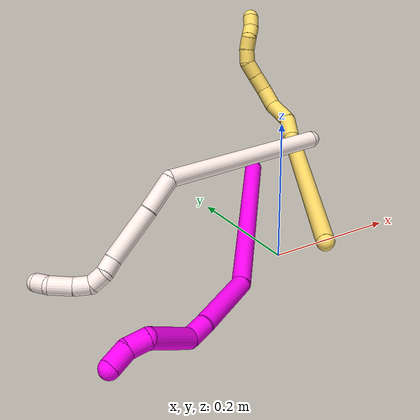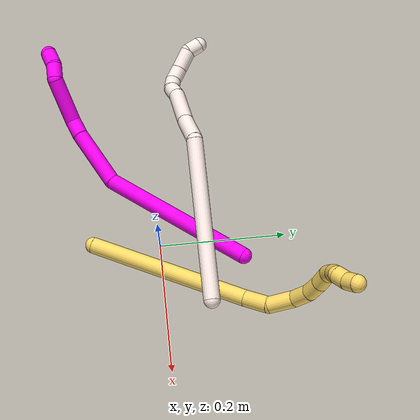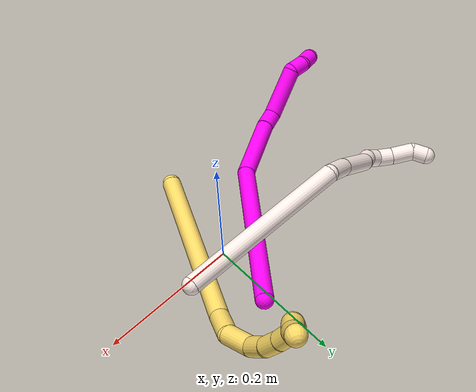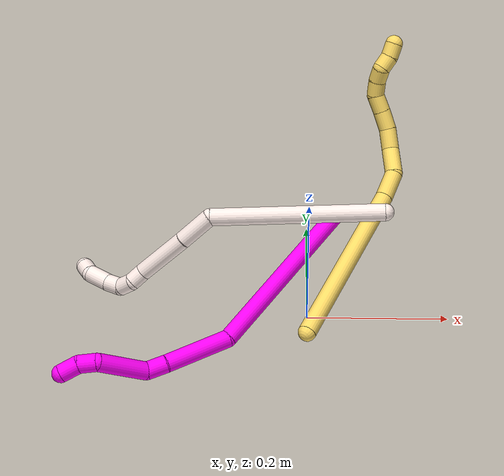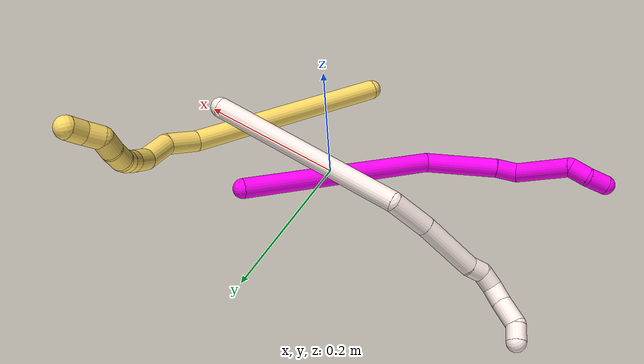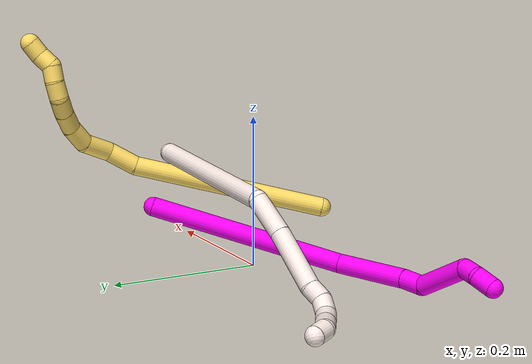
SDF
<sdf version="1.7">
 <world name="default">
  <model name="photoneo_s_sensor">
   <static>1</static>
   <pose>0 0 2 1.57079 1.57079 3.14159</pose>
   <link name="link">
    <inertial><mass>0.1</mass></inertial>
    <sensor name="sensor" type="depth">
     <update_rate>30</update_rate>
     <camera>
      <horizontal_fov>1.22</horizontal_fov>
      <image><width>1920</width><height>1200</height><format>B8G8R8</format></image>
      <clip><near>0.1</near><far>4</far></clip>
      <depth_camera><output>points</output></depth_camera>
     </camera>
     <plugin name="camera_plugin" filename="libgazebo_ros_depth_camera.so">
      <baseline>0.2</baseline>
      <alwaysOn>1</alwaysOn>
      <updateRate>0.0</updateRate>
      <cameraName>camera_ir</cameraName>
      <imageTopicName>/camera/color/image_raw</imageTopicName>
      <cameraInfoTopicName>/camera/color/camera_info</cameraInfoTopicName>
      <depthImageTopicName>/camera/depth/image_raw</depthImageTopicName>
      <depthImageCameraInfoTopicName>/camera/depth/camera_info</depthImageCameraInfoTopicName>
      <pointCloudTopicName>/camera/depth/points</pointCloudTopicName>
      <frameName>fr_optical</frameName>
      <pointCloudCutoff>0.1</pointCloudCutoff>
      <pointCloudCutoffMax>2.0</pointCloudCutoffMax>
      <distortionK1>0</distortionK1>
      <distortionK2>0</distortionK2>
      <distortionK3>0</distortionK3>
      <distortionT1>0</distortionT1>
      <distortionT2>0</distortionT2>
      <CxPrime>0</CxPrime>
      <Cx>0</Cx>
      <Cy>0</Cy>
      <focalLength>0</focalLength>
      <hackBaseline>0</hackBaseline>
     </plugin>
    </sensor>
   </link>
  </model>
  <model name="bin">
   <static>1</static>
   <link name="bottom">
    <collision name="collision-bottom">
     <pose>0 0 -0.01 0 -0 0</pose>
     <geometry><box><size>0.8 0.6 0.02</size></box></geometry>
     <surface>
      <friction><ode><mu>100</mu><mu2>100</mu2></ode></friction>
      <contact><collide_bitmask>65535</collide_bitmask></contact>
     </surface>
    </collision>
   </link>
   <link name="west_wall">
    <collision name="collision-west_wall">
     <pose>-0.41 0 0.1 0 -0 0</pose>
     <geometry><box><size>0.02 0.6 0.2</size></box></geometry>
     <surface>
      <friction><ode><mu>100</mu><mu2>100</mu2></ode></friction>
      <contact><collide_bitmask>65535</collide_bitmask></contact>
     </surface>
    </collision>
   </link>
   <link name="east_wall">
    <collision name="collision-east_wall">
     <pose>0.41 0 0.1 0 -0 0</pose>
     <geometry><box><size>0.02 0.6 0.2</size></box></geometry>
     <surface>
      <friction><ode><mu>100</mu><mu2>100</mu2></ode></friction>
      <contact><collide_bitmask>65535</collide_bitmask></contact>
     </surface>
    </collision>
   </link>
   <link name="south_wall">
    <collision name="collision-south_wall">
     <pose>0 -0.31 0.1 0 -0 0</pose>
     <geometry><box><size>0.8 0.02 0.2</size></box></geometry>
     <surface>
      <friction><ode><mu>100</mu><mu2>100</mu2></ode></friction>
      <contact><collide_bitmask>65535</collide_bitmask></contact>
     </surface>
    </collision>
   </link>
   <link name="north_wall">
    <collision name="collision-north_wall">
     <pose>0 0.31 0.1 0 -0 0</pose>
     <geometry><box><size>0.8 0.02 0.2</size></box></geometry>
     <surface>
      <friction><ode><mu>100</mu><mu2>100</mu2></ode></friction>
      <contact><collide_bitmask>65535</collide_bitmask></contact>
     </surface>
    </collision>
   </link>
  </model>
  <model name="5">
   <static>0</static>
   <link name="5">
    <collision name="collision-cylinder-e_1_1_4">
     <pose>0.001889 0.013874 0.125974 -0.10969 0.014901 -0.000818</pose>
     <geometry><cylinder><radius>0.0125</radius><length>0.2535</length></cylinder></geometry>
     <surface>
      <friction><ode><mu>1.16</mu><mu2>1.16</mu2><slip1>0</slip1><slip2>0</slip2></ode></friction>
      <contact><ode><kp>1e+06</kp><kd>1</kd><max_vel>0</max_vel><min_depth>0.001</min_depth></ode></contact>
     </surface>
    </collision>
    <visual name="visual-cylinder-e_1_1_4">
     <pose>0.001889 0.013874 0.125974 -0.10969 0.014901 -0.000818</pose>
     <geometry><cylinder><radius>0.0125</radius><length>0.2535</length></cylinder></geometry>
     <material><ambient>1 0.858824 0.4 1</ambient></material>
    </visual>
    <collision name="collision-cylinder-e_2_4_5">
     <pose>-0.0004 0.033071 0.270765 -0.275728 -0.210432 0.029302</pose>
     <geometry><cylinder><radius>0.0125</radius><length>0.039993</length></cylinder></geometry>
     <surface>
      <friction><ode><mu>1.16</mu><mu2>1.16</mu2><slip1>0</slip1><slip2>0</slip2></ode></friction>
      <contact><ode><kp>1e+06</kp><kd>1</kd><max_vel>0</max_vel><min_depth>0.001</min_depth></ode></contact>
     </surface>
    </collision>
    <visual name="visual-cylinder-e_2_4_5">
     <pose>-0.0004 0.033071 0.270765 -0.275728 -0.210432 0.029302</pose>
     <geometry><cylinder><radius>0.0125</radius><length>0.039993</length></cylinder></geometry>
     <material><ambient>1 0.858824 0.4 1</ambient></material>
    </visual>
    <collision name="collision-cylinder-e_3_5_6">
     <pose>-0.002467 0.050724 0.305128 -0.67049 0.105934 -0.036937</pose>
     <geometry><cylinder><radius>0.0125</radius><length>0.039907</length></cylinder></geometry>
     <surface>
      <friction><ode><mu>1.16</mu><mu2>1.16</mu2><slip1>0</slip1><slip2>0</slip2></ode></friction>
      <contact><ode><kp>1e+06</kp><kd>1</kd><max_vel>0</max_vel><min_depth>0.001</min_depth></ode></contact>
     </surface>
    </collision>
    <visual name="visual-cylinder-e_3_5_6">
     <pose>-0.002467 0.050724 0.305128 -0.67049 0.105934 -0.036937</pose>
     <geometry><cylinder><radius>0.0125</radius><length>0.039907</length></cylinder></geometry>
     <material><ambient>1 0.858824 0.4 1</ambient></material>
    </visual>
    <collision name="collision-cylinder-e_4_6_7">
     <pose>-0.004717 0.074629 0.329855 -0.900277 -0.286934 0.139387</pose>
     <geometry><cylinder><radius>0.0125</radius><length>0.030809</length></cylinder></geometry>
     <surface>
      <friction><ode><mu>1.16</mu><mu2>1.16</mu2><slip1>0</slip1><slip2>0</slip2></ode></friction>
      <contact><ode><kp>1e+06</kp><kd>1</kd><max_vel>0</max_vel><min_depth>0.001</min_depth></ode></contact>
     </surface>
    </collision>
    <visual name="visual-cylinder-e_4_6_7">
     <pose>-0.004717 0.074629 0.329855 -0.900277 -0.286934 0.139387</pose>
     <geometry><cylinder><radius>0.0125</radius><length>0.030809</length></cylinder></geometry>
     <material><ambient>1 0.858824 0.4 1</ambient></material>
    </visual>
    <collision name="collision-cylinder-e_5_7_8">
     <pose>-0.0137 0.098235 0.344126 -1.17048 -0.340239 0.226697</pose>
     <geometry><cylinder><radius>0.0125</radius><length>0.027713</length></cylinder></geometry>
     <surface>
      <friction><ode><mu>1.16</mu><mu2>1.16</mu2><slip1>0</slip1><slip2>0</slip2></ode></friction>
      <contact><ode><kp>1e+06</kp><kd>1</kd><max_vel>0</max_vel><min_depth>0.001</min_depth></ode></contact>
     </surface>
    </collision>
    <visual name="visual-cylinder-e_5_7_8">
     <pose>-0.0137 0.098235 0.344126 -1.17048 -0.340239 0.226697</pose>
     <geometry><cylinder><radius>0.0125</radius><length>0.027713</length></cylinder></geometry>
     <material><ambient>1 0.858824 0.4 1</ambient></material>
    </visual>
    <collision name="collision-cylinder-e_6_8_9">
     <pose>-0.023174 0.121625 0.352777 -1.26708 -0.386816 0.285773</pose>
     <geometry><cylinder><radius>0.0125</radius><length>0.025711</length></cylinder></geometry>
     <surface>
      <friction><ode><mu>1.16</mu><mu2>1.16</mu2><slip1>0</slip1><slip2>0</slip2></ode></friction>
      <contact><ode><kp>1e+06</kp><kd>1</kd><max_vel>0</max_vel><min_depth>0.001</min_depth></ode></contact>
     </surface>
    </collision>
    <visual name="visual-cylinder-e_6_8_9">
     <pose>-0.023174 0.121625 0.352777 -1.26708 -0.386816 0.285773</pose>
     <geometry><cylinder><radius>0.0125</radius><length>0.025711</length></cylinder></geometry>
     <material><ambient>1 0.858824 0.4 1</ambient></material>
    </visual>
    <collision name="collision-cylinder-e_7_9_10">
     <pose>-0.03596 0.138906 0.360803 -0.924575 -0.819345 0.426195</pose>
     <geometry><cylinder><radius>0.0125</radius><length>0.021723</length></cylinder></geometry>
     <surface>
      <friction><ode><mu>1.16</mu><mu2>1.16</mu2><slip1>0</slip1><slip2>0</slip2></ode></friction>
      <contact><ode><kp>1e+06</kp><kd>1</kd><max_vel>0</max_vel><min_depth>0.001</min_depth></ode></contact>
     </surface>
    </collision>
    <visual name="visual-cylinder-e_7_9_10">
     <pose>-0.03596 0.138906 0.360803 -0.924575 -0.819345 0.426195</pose>
     <geometry><cylinder><radius>0.0125</radius><length>0.021723</length></cylinder></geometry>
     <material><ambient>1 0.858824 0.4 1</ambient></material>
    </visual>
    <collision name="collision-cylinder-e_8_10_11">
     <pose>-0.052654 0.148681 0.369044 -0.795883 -1.01862 0.461161</pose>
     <geometry><cylinder><radius>0.0125</radius><length>0.020573</length></cylinder></geometry>
     <surface>
      <friction><ode><mu>1.16</mu><mu2>1.16</mu2><slip1>0</slip1><slip2>0</slip2></ode></friction>
      <contact><ode><kp>1e+06</kp><kd>1</kd><max_vel>0</max_vel><min_depth>0.001</min_depth></ode></contact>
     </surface>
    </collision>
    <visual name="visual-cylinder-e_8_10_11">
     <pose>-0.052654 0.148681 0.369044 -0.795883 -1.01862 0.461161</pose>
     <geometry><cylinder><radius>0.0125</radius><length>0.020573</length></cylinder></geometry>
     <material><ambient>1 0.858824 0.4 1</ambient></material>
    </visual>
    <collision name="collision-cylinder-e_9_11_12">
     <pose>-0.066491 0.153641 0.381368 -0.128535 -0.532418 0.035094</pose>
     <geometry><cylinder><radius>0.0125</radius><length>0.02001</length></cylinder></geometry>
     <surface>
      <friction><ode><mu>1.16</mu><mu2>1.16</mu2><slip1>0</slip1><slip2>0</slip2></ode></friction>
      <contact><ode><kp>1e+06</kp><kd>1</kd><max_vel>0</max_vel><min_depth>0.001</min_depth></ode></contact>
     </surface>
    </collision>
    <visual name="visual-cylinder-e_9_11_12">
     <pose>-0.066491 0.153641 0.381368 -0.128535 -0.532418 0.035094</pose>
     <geometry><cylinder><radius>0.0125</radius><length>0.02001</length></cylinder></geometry>
     <material><ambient>1 0.858824 0.4 1</ambient></material>
    </visual>
    <collision name="collision-cylinder-e_10_12_2">
     <pose>-0.077006 0.158631 0.397398 -0.479 -0.572773 0.14357</pose>
     <geometry><cylinder><radius>0.0125</radius><length>0.020061</length></cylinder></geometry>
     <surface>
      <friction><ode><mu>1.16</mu><mu2>1.16</mu2><slip1>0</slip1><slip2>0</slip2></ode></friction>
      <contact><ode><kp>1e+06</kp><kd>1</kd><max_vel>0</max_vel><min_depth>0.001</min_depth></ode></contact>
     </surface>
    </collision>
    <visual name="visual-cylinder-e_10_12_2">
     <pose>-0.077006 0.158631 0.397398 -0.479 -0.572773 0.14357</pose>
     <geometry><cylinder><radius>0.0125</radius><length>0.020061</length></cylinder></geometry>
     <material><ambient>1 0.858824 0.4 1</ambient></material>
    </visual>
    <collision name="collision-sphere-2">
     <pose>-0.082442 0.162516 0.404879 0 -0 0</pose>
     <geometry><sphere><radius>0.0125</radius></sphere></geometry>
     <surface>
      <friction><ode><mu>1.16</mu><mu2>1.16</mu2><slip1>0</slip1><slip2>0</slip2></ode></friction>
      <contact><ode><kp>1e+06</kp><kd>1</kd><max_vel>0</max_vel><min_depth>0.001</min_depth></ode></contact>
     </surface>
    </collision>
    <visual name="visual-sphere-2">
     <pose>-0.082442 0.162516 0.404879 0 -0 0</pose>
     <geometry><sphere><radius>0.0125</radius></sphere></geometry>
     <material><ambient>1 0.858824 0.4 1</ambient></material>
    </visual>
    <collision name="collision-sphere-12">
     <pose>-0.07157 0.154746 0.389917 0 -0 0</pose>
     <geometry><sphere><radius>0.0125</radius></sphere></geometry>
     <surface>
      <friction><ode><mu>1.16</mu><mu2>1.16</mu2><slip1>0</slip1><slip2>0</slip2></ode></friction>
      <contact><ode><kp>1e+06</kp><kd>1</kd><max_vel>0</max_vel><min_depth>0.001</min_depth></ode></contact>
     </surface>
    </collision>
    <visual name="visual-sphere-12">
     <pose>-0.07157 0.154746 0.389917 0 -0 0</pose>
     <geometry><sphere><radius>0.0125</radius></sphere></geometry>
     <material><ambient>1 0.858824 0.4 1</ambient></material>
    </visual>
    <collision name="collision-sphere-11">
     <pose>-0.061412 0.152536 0.372819 0 -0 0</pose>
     <geometry><sphere><radius>0.0125</radius></sphere></geometry>
     <surface>
      <friction><ode><mu>1.16</mu><mu2>1.16</mu2><slip1>0</slip1><slip2>0</slip2></ode></friction>
      <contact><ode><kp>1e+06</kp><kd>1</kd><max_vel>0</max_vel><min_depth>0.001</min_depth></ode></contact>
     </surface>
    </collision>
    <visual name="visual-sphere-11">
     <pose>-0.061412 0.152536 0.372819 0 -0 0</pose>
     <geometry><sphere><radius>0.0125</radius></sphere></geometry>
     <material><ambient>1 0.858824 0.4 1</ambient></material>
    </visual>
    <collision name="collision-sphere-10">
     <pose>-0.043897 0.144826 0.365269 0 -0 0</pose>
     <geometry><sphere><radius>0.0125</radius></sphere></geometry>
     <surface>
      <friction><ode><mu>1.16</mu><mu2>1.16</mu2><slip1>0</slip1><slip2>0</slip2></ode></friction>
      <contact><ode><kp>1e+06</kp><kd>1</kd><max_vel>0</max_vel><min_depth>0.001</min_depth></ode></contact>
     </surface>
    </collision>
    <visual name="visual-sphere-10">
     <pose>-0.043897 0.144826 0.365269 0 -0 0</pose>
     <geometry><sphere><radius>0.0125</radius></sphere></geometry>
     <material><ambient>1 0.858824 0.4 1</ambient></material>
    </visual>
    <collision name="collision-sphere-9">
     <pose>-0.028024 0.132986 0.356338 0 -0 0</pose>
     <geometry><sphere><radius>0.0125</radius></sphere></geometry>
     <surface>
      <friction><ode><mu>1.16</mu><mu2>1.16</mu2><slip1>0</slip1><slip2>0</slip2></ode></friction>
      <contact><ode><kp>1e+06</kp><kd>1</kd><max_vel>0</max_vel><min_depth>0.001</min_depth></ode></contact>
     </surface>
    </collision>
    <visual name="visual-sphere-9">
     <pose>-0.028024 0.132986 0.356338 0 -0 0</pose>
     <geometry><sphere><radius>0.0125</radius></sphere></geometry>
     <material><ambient>1 0.858824 0.4 1</ambient></material>
    </visual>
    <collision name="collision-sphere-4">
     <pose>0.003777 0.027747 0.251948 0 -0 0</pose>
     <geometry><sphere><radius>0.0125</radius></sphere></geometry>
     <surface>
      <friction><ode><mu>1.16</mu><mu2>1.16</mu2><slip1>0</slip1><slip2>0</slip2></ode></friction>
      <contact><ode><kp>1e+06</kp><kd>1</kd><max_vel>0</max_vel><min_depth>0.001</min_depth></ode></contact>
     </surface>
    </collision>
    <visual name="visual-sphere-4">
     <pose>0.003777 0.027747 0.251948 0 -0 0</pose>
     <geometry><sphere><radius>0.0125</radius></sphere></geometry>
     <material><ambient>1 0.858824 0.4 1</ambient></material>
    </visual>
    <collision name="collision-sphere-1">
     <geometry><sphere><radius>0.0125</radius></sphere></geometry>
     <surface>
      <friction><ode><mu>1.16</mu><mu2>1.16</mu2><slip1>0</slip1><slip2>0</slip2></ode></friction>
      <contact><ode><kp>1e+06</kp><kd>1</kd><max_vel>0</max_vel><min_depth>0.001</min_depth></ode></contact>
     </surface>
    </collision>
    <visual name="visual-sphere-1">
     <geometry><sphere><radius>0.0125</radius></sphere></geometry>
     <material><ambient>1 0.858824 0.4 1</ambient></material>
    </visual>
    <collision name="collision-sphere-8">
     <pose>-0.018324 0.110264 0.349217 0 -0 0</pose>
     <geometry><sphere><radius>0.0125</radius></sphere></geometry>
     <surface>
      <friction><ode><mu>1.16</mu><mu2>1.16</mu2><slip1>0</slip1><slip2>0</slip2></ode></friction>
      <contact><ode><kp>1e+06</kp><kd>1</kd><max_vel>0</max_vel><min_depth>0.001</min_depth></ode></contact>
     </surface>
    </collision>
    <visual name="visual-sphere-8">
     <pose>-0.018324 0.110264 0.349217 0 -0 0</pose>
     <geometry><sphere><radius>0.0125</radius></sphere></geometry>
     <material><ambient>1 0.858824 0.4 1</ambient></material>
    </visual>
    <collision name="collision-sphere-5">
     <pose>-0.004577 0.038395 0.289582 0 -0 0</pose>
     <geometry><sphere><radius>0.0125</radius></sphere></geometry>
     <surface>
      <friction><ode><mu>1.16</mu><mu2>1.16</mu2><slip1>0</slip1><slip2>0</slip2></ode></friction>
      <contact><ode><kp>1e+06</kp><kd>1</kd><max_vel>0</max_vel><min_depth>0.001</min_depth></ode></contact>
     </surface>
    </collision>
    <visual name="visual-sphere-5">
     <pose>-0.004577 0.038395 0.289582 0 -0 0</pose>
     <geometry><sphere><radius>0.0125</radius></sphere></geometry>
     <material><ambient>1 0.858824 0.4 1</ambient></material>
    </visual>
    <collision name="collision-sphere-6">
     <pose>-0.000357 0.063053 0.320674 0 -0 0</pose>
     <geometry><sphere><radius>0.0125</radius></sphere></geometry>
     <surface>
      <friction><ode><mu>1.16</mu><mu2>1.16</mu2><slip1>0</slip1><slip2>0</slip2></ode></friction>
      <contact><ode><kp>1e+06</kp><kd>1</kd><max_vel>0</max_vel><min_depth>0.001</min_depth></ode></contact>
     </surface>
    </collision>
    <visual name="visual-sphere-6">
     <pose>-0.000357 0.063053 0.320674 0 -0 0</pose>
     <geometry><sphere><radius>0.0125</radius></sphere></geometry>
     <material><ambient>1 0.858824 0.4 1</ambient></material>
    </visual>
    <collision name="collision-sphere-7">
     <pose>-0.009076 0.086205 0.339036 0 -0 0</pose>
     <geometry><sphere><radius>0.0125</radius></sphere></geometry>
     <surface>
      <friction><ode><mu>1.16</mu><mu2>1.16</mu2><slip1>0</slip1><slip2>0</slip2></ode></friction>
      <contact><ode><kp>1e+06</kp><kd>1</kd><max_vel>0</max_vel><min_depth>0.001</min_depth></ode></contact>
     </surface>
    </collision>
    <visual name="visual-sphere-7">
     <pose>-0.009076 0.086205 0.339036 0 -0 0</pose>
     <geometry><sphere><radius>0.0125</radius></sphere></geometry>
     <material><ambient>1 0.858824 0.4 1</ambient></material>
    </visual>
    <inertial>
     <pose>-0.010992 0.054691 0.229486 0 -0 0</pose>
     <mass>0.5</mass>
     <inertia>
      <ixx>0.001388</ixx>
      <ixy>0</ixy>
      <ixz>0</ixz>
      <iyy>0.001396</iyy>
      <iyz>0</iyz>
      <izz>-0.000146</izz>
     </inertia>
    </inertial>
   </link>
   <pose>-0.001023 -0.102122 0.067884 1.25246 0.95214 2.31521</pose>
  </model>
  <model name="10">
   <static>0</static>
   <link name="10">
    <collision name="collision-cylinder-e_1_1_4">
     <pose>-0.045104 -0.11485 0.025762 1.35014 -0.365937 -0.294121</pose>
     <geometry><cylinder><radius>0.0125</radius><length>0.252099</length></cylinder></geometry>
     <surface>
      <friction><ode><mu>1.16</mu><mu2>1.16</mu2><slip1>0</slip1><slip2>0</slip2></ode></friction>
      <contact><ode><kp>1e+06</kp><kd>1</kd><max_vel>0</max_vel><min_depth>0.001</min_depth></ode></contact>
     </surface>
    </collision>
    <visual name="visual-cylinder-e_1_1_4">
     <pose>-0.045104 -0.11485 0.025762 1.35014 -0.365937 -0.294121</pose>
     <geometry><cylinder><radius>0.0125</radius><length>0.252099</length></cylinder></geometry>
     <material><ambient>1 0 0.964706 1</ambient></material>
    </visual>
    <collision name="collision-cylinder-e_2_4_5">
     <pose>-0.11087 -0.261805 0.078689 0.868573 -0.45667 -0.214743</pose>
     <geometry><cylinder><radius>0.0125</radius><length>0.093716</length></cylinder></geometry>
     <surface>
      <friction><ode><mu>1.16</mu><mu2>1.16</mu2><slip1>0</slip1><slip2>0</slip2></ode></friction>
      <contact><ode><kp>1e+06</kp><kd>1</kd><max_vel>0</max_vel><min_depth>0.001</min_depth></ode></contact>
     </surface>
    </collision>
    <visual name="visual-cylinder-e_2_4_5">
     <pose>-0.11087 -0.261805 0.078689 0.868573 -0.45667 -0.214743</pose>
     <geometry><cylinder><radius>0.0125</radius><length>0.093716</length></cylinder></geometry>
     <material><ambient>1 0 0.964706 1</ambient></material>
    </visual>
    <collision name="collision-cylinder-e_3_5_6">
     <pose>-0.139422 -0.302418 0.114161 0.797255 -0.585868 -0.252709</pose>
     <geometry><cylinder><radius>0.0125</radius><length>0.028539</length></cylinder></geometry>
     <surface>
      <friction><ode><mu>1.16</mu><mu2>1.16</mu2><slip1>0</slip1><slip2>0</slip2></ode></friction>
      <contact><ode><kp>1e+06</kp><kd>1</kd><max_vel>0</max_vel><min_depth>0.001</min_depth></ode></contact>
     </surface>
    </collision>
    <visual name="visual-cylinder-e_3_5_6">
     <pose>-0.139422 -0.302418 0.114161 0.797255 -0.585868 -0.252709</pose>
     <geometry><cylinder><radius>0.0125</radius><length>0.028539</length></cylinder></geometry>
     <material><ambient>1 0 0.964706 1</ambient></material>
    </visual>
    <collision name="collision-cylinder-e_4_6_7">
     <pose>-0.149234 -0.326116 0.156019 0.425183 -0.052127 -0.011254</pose>
     <geometry><cylinder><radius>0.0125</radius><length>0.073759</length></cylinder></geometry>
     <surface>
      <friction><ode><mu>1.16</mu><mu2>1.16</mu2><slip1>0</slip1><slip2>0</slip2></ode></friction>
      <contact><ode><kp>1e+06</kp><kd>1</kd><max_vel>0</max_vel><min_depth>0.001</min_depth></ode></contact>
     </surface>
    </collision>
    <visual name="visual-cylinder-e_4_6_7">
     <pose>-0.149234 -0.326116 0.156019 0.425183 -0.052127 -0.011254</pose>
     <geometry><cylinder><radius>0.0125</radius><length>0.073759</length></cylinder></geometry>
     <material><ambient>1 0 0.964706 1</ambient></material>
    </visual>
    <collision name="collision-cylinder-e_5_7_8">
     <pose>-0.159898 -0.344882 0.198119 0.39591 -0.756257 -0.159024</pose>
     <geometry><cylinder><radius>0.0125</radius><length>0.025479</length></cylinder></geometry>
     <surface>
      <friction><ode><mu>1.16</mu><mu2>1.16</mu2><slip1>0</slip1><slip2>0</slip2></ode></friction>
      <contact><ode><kp>1e+06</kp><kd>1</kd><max_vel>0</max_vel><min_depth>0.001</min_depth></ode></contact>
     </surface>
    </collision>
    <visual name="visual-cylinder-e_5_7_8">
     <pose>-0.159898 -0.344882 0.198119 0.39591 -0.756257 -0.159024</pose>
     <geometry><cylinder><radius>0.0125</radius><length>0.025479</length></cylinder></geometry>
     <material><ambient>1 0 0.964706 1</ambient></material>
    </visual>
    <collision name="collision-cylinder-e_6_8_2">
     <pose>-0.17831 -0.355642 0.21207 0.926323 -0.821881 -0.428539</pose>
     <geometry><cylinder><radius>0.0125</radius><length>0.026408</length></cylinder></geometry>
     <surface>
      <friction><ode><mu>1.16</mu><mu2>1.16</mu2><slip1>0</slip1><slip2>0</slip2></ode></friction>
      <contact><ode><kp>1e+06</kp><kd>1</kd><max_vel>0</max_vel><min_depth>0.001</min_depth></ode></contact>
     </surface>
    </collision>
    <visual name="visual-cylinder-e_6_8_2">
     <pose>-0.17831 -0.355642 0.21207 0.926323 -0.821881 -0.428539</pose>
     <geometry><cylinder><radius>0.0125</radius><length>0.026408</length></cylinder></geometry>
     <material><ambient>1 0 0.964706 1</ambient></material>
    </visual>
    <collision name="collision-sphere-2">
     <pose>-0.187981 -0.362829 0.21747 0 -0 0</pose>
     <geometry><sphere><radius>0.0125</radius></sphere></geometry>
     <surface>
      <friction><ode><mu>1.16</mu><mu2>1.16</mu2><slip1>0</slip1><slip2>0</slip2></ode></friction>
      <contact><ode><kp>1e+06</kp><kd>1</kd><max_vel>0</max_vel><min_depth>0.001</min_depth></ode></contact>
     </surface>
    </collision>
    <visual name="visual-sphere-2">
     <pose>-0.187981 -0.362829 0.21747 0 -0 0</pose>
     <geometry><sphere><radius>0.0125</radius></sphere></geometry>
     <material><ambient>1 0 0.964706 1</ambient></material>
    </visual>
    <collision name="collision-sphere-4">
     <pose>-0.090207 -0.229699 0.051524 0 -0 0</pose>
     <geometry><sphere><radius>0.0125</radius></sphere></geometry>
     <surface>
      <friction><ode><mu>1.16</mu><mu2>1.16</mu2><slip1>0</slip1><slip2>0</slip2></ode></friction>
      <contact><ode><kp>1e+06</kp><kd>1</kd><max_vel>0</max_vel><min_depth>0.001</min_depth></ode></contact>
     </surface>
    </collision>
    <visual name="visual-sphere-4">
     <pose>-0.090207 -0.229699 0.051524 0 -0 0</pose>
     <geometry><sphere><radius>0.0125</radius></sphere></geometry>
     <material><ambient>1 0 0.964706 1</ambient></material>
    </visual>
    <collision name="collision-sphere-1">
     <geometry><sphere><radius>0.0125</radius></sphere></geometry>
     <surface>
      <friction><ode><mu>1.16</mu><mu2>1.16</mu2><slip1>0</slip1><slip2>0</slip2></ode></friction>
      <contact><ode><kp>1e+06</kp><kd>1</kd><max_vel>0</max_vel><min_depth>0.001</min_depth></ode></contact>
     </surface>
    </collision>
    <visual name="visual-sphere-1">
     <geometry><sphere><radius>0.0125</radius></sphere></geometry>
     <material><ambient>1 0 0.964706 1</ambient></material>
    </visual>
    <collision name="collision-sphere-8">
     <pose>-0.168639 -0.348456 0.206669 0 -0 0</pose>
     <geometry><sphere><radius>0.0125</radius></sphere></geometry>
     <surface>
      <friction><ode><mu>1.16</mu><mu2>1.16</mu2><slip1>0</slip1><slip2>0</slip2></ode></friction>
      <contact><ode><kp>1e+06</kp><kd>1</kd><max_vel>0</max_vel><min_depth>0.001</min_depth></ode></contact>
     </surface>
    </collision>
    <visual name="visual-sphere-8">
     <pose>-0.168639 -0.348456 0.206669 0 -0 0</pose>
     <geometry><sphere><radius>0.0125</radius></sphere></geometry>
     <material><ambient>1 0 0.964706 1</ambient></material>
    </visual>
    <collision name="collision-sphere-5">
     <pose>-0.131532 -0.293912 0.105854 0 -0 0</pose>
     <geometry><sphere><radius>0.0125</radius></sphere></geometry>
     <surface>
      <friction><ode><mu>1.16</mu><mu2>1.16</mu2><slip1>0</slip1><slip2>0</slip2></ode></friction>
      <contact><ode><kp>1e+06</kp><kd>1</kd><max_vel>0</max_vel><min_depth>0.001</min_depth></ode></contact>
     </surface>
    </collision>
    <visual name="visual-sphere-5">
     <pose>-0.131532 -0.293912 0.105854 0 -0 0</pose>
     <geometry><sphere><radius>0.0125</radius></sphere></geometry>
     <material><ambient>1 0 0.964706 1</ambient></material>
    </visual>
    <collision name="collision-sphere-6">
     <pose>-0.147313 -0.310925 0.122469 0 -0 0</pose>
     <geometry><sphere><radius>0.0125</radius></sphere></geometry>
     <surface>
      <friction><ode><mu>1.16</mu><mu2>1.16</mu2><slip1>0</slip1><slip2>0</slip2></ode></friction>
      <contact><ode><kp>1e+06</kp><kd>1</kd><max_vel>0</max_vel><min_depth>0.001</min_depth></ode></contact>
     </surface>
    </collision>
    <visual name="visual-sphere-6">
     <pose>-0.147313 -0.310925 0.122469 0 -0 0</pose>
     <geometry><sphere><radius>0.0125</radius></sphere></geometry>
     <material><ambient>1 0 0.964706 1</ambient></material>
    </visual>
    <collision name="collision-sphere-7">
     <pose>-0.151156 -0.341308 0.189569 0 -0 0</pose>
     <geometry><sphere><radius>0.0125</radius></sphere></geometry>
     <surface>
      <friction><ode><mu>1.16</mu><mu2>1.16</mu2><slip1>0</slip1><slip2>0</slip2></ode></friction>
      <contact><ode><kp>1e+06</kp><kd>1</kd><max_vel>0</max_vel><min_depth>0.001</min_depth></ode></contact>
     </surface>
    </collision>
    <visual name="visual-sphere-7">
     <pose>-0.151156 -0.341308 0.189569 0 -0 0</pose>
     <geometry><sphere><radius>0.0125</radius></sphere></geometry>
     <material><ambient>1 0 0.964706 1</ambient></material>
    </visual>
    <inertial>
     <pose>-0.09106 -0.208705 0.078566 0 -0 0</pose>
     <mass>0.5</mass>
     <inertia><ixx>0.000913</ixx><ixy>0</ixy><ixz>0</ixz><iyy>0.0001</iyy><iyz>0</iyz><izz>0.001831</izz></inertia>
    </inertial>
   </link>
   <pose>0.039882 0.125522 0.086274 0.189195 -0.87782 -0.396212</pose>
  </model>
  <model name="11">
   <static>0</static>
   <link name="11">
    <collision name="collision-cylinder-e_1_1_4">
     <pose>-0.097763 0.019751 0.07251 -0.265943 -0.91542 0.131591</pose>
     <geometry><cylinder><radius>0.0125</radius><length>0.24662</length></cylinder></geometry>
     <surface>
      <friction><ode><mu>1.16</mu><mu2>1.16</mu2><slip1>0</slip1><slip2>0</slip2></ode></friction>
      <contact><ode><kp>1e+06</kp><kd>1</kd><max_vel>0</max_vel><min_depth>0.001</min_depth></ode></contact>
     </surface>
    </collision>
    <visual name="visual-cylinder-e_1_1_4">
     <pose>-0.097763 0.019751 0.07251 -0.265943 -0.91542 0.131591</pose>
     <geometry><cylinder><radius>0.0125</radius><length>0.24662</length></cylinder></geometry>
     <material><ambient>1 0.933333 0.909804 1</ambient></material>
    </visual>
    <collision name="collision-cylinder-e_2_4_5">
     <pose>-0.201234 0.048191 0.169166 -0.345388 -0.21892 0.038335</pose>
     <geometry><cylinder><radius>0.0125</radius><length>0.052577</length></cylinder></geometry>
     <surface>
      <friction><ode><mu>1.16</mu><mu2>1.16</mu2><slip1>0</slip1><slip2>0</slip2></ode></friction>
      <contact><ode><kp>1e+06</kp><kd>1</kd><max_vel>0</max_vel><min_depth>0.001</min_depth></ode></contact>
     </surface>
    </collision>
    <visual name="visual-cylinder-e_2_4_5">
     <pose>-0.201234 0.048191 0.169166 -0.345388 -0.21892 0.038335</pose>
     <geometry><cylinder><radius>0.0125</radius><length>0.052577</length></cylinder></geometry>
     <material><ambient>1 0.933333 0.909804 1</ambient></material>
    </visual>
    <collision name="collision-cylinder-e_3_5_6">
     <pose>-0.215533 0.066886 0.230986 -0.259622 -0.216876 0.028422</pose>
     <geometry><cylinder><radius>0.0125</radius><length>0.079831</length></cylinder></geometry>
     <surface>
      <friction><ode><mu>1.16</mu><mu2>1.16</mu2><slip1>0</slip1><slip2>0</slip2></ode></friction>
      <contact><ode><kp>1e+06</kp><kd>1</kd><max_vel>0</max_vel><min_depth>0.001</min_depth></ode></contact>
     </surface>
    </collision>
    <visual name="visual-cylinder-e_3_5_6">
     <pose>-0.215533 0.066886 0.230986 -0.259622 -0.216876 0.028422</pose>
     <geometry><cylinder><radius>0.0125</radius><length>0.079831</length></cylinder></geometry>
     <material><ambient>1 0.933333 0.909804 1</ambient></material>
    </visual>
    <collision name="collision-cylinder-e_4_6_7">
     <pose>-0.226706 0.081934 0.277638 -0.511685 -0.245936 0.064634</pose>
     <geometry><cylinder><radius>0.0125</radius><length>0.021232</length></cylinder></geometry>
     <surface>
      <friction><ode><mu>1.16</mu><mu2>1.16</mu2><slip1>0</slip1><slip2>0</slip2></ode></friction>
      <contact><ode><kp>1e+06</kp><kd>1</kd><max_vel>0</max_vel><min_depth>0.001</min_depth></ode></contact>
     </surface>
    </collision>
    <visual name="visual-cylinder-e_4_6_7">
     <pose>-0.226706 0.081934 0.277638 -0.511685 -0.245936 0.064634</pose>
     <geometry><cylinder><radius>0.0125</radius><length>0.021232</length></cylinder></geometry>
     <material><ambient>1 0.933333 0.909804 1</ambient></material>
    </visual>
    <collision name="collision-cylinder-e_5_7_8">
     <pose>-0.232803 0.086735 0.297138 0.022916 -0.322128 -0.003723</pose>
     <geometry><cylinder><radius>0.0125</radius><length>0.022191</length></cylinder></geometry>
     <surface>
      <friction><ode><mu>1.16</mu><mu2>1.16</mu2><slip1>0</slip1><slip2>0</slip2></ode></friction>
      <contact><ode><kp>1e+06</kp><kd>1</kd><max_vel>0</max_vel><min_depth>0.001</min_depth></ode></contact>
     </surface>
    </collision>
    <visual name="visual-cylinder-e_5_7_8">
     <pose>-0.232803 0.086735 0.297138 0.022916 -0.322128 -0.003723</pose>
     <geometry><cylinder><radius>0.0125</radius><length>0.022191</length></cylinder></geometry>
     <material><ambient>1 0.933333 0.909804 1</ambient></material>
    </visual>
    <collision name="collision-cylinder-e_6_8_9">
     <pose>-0.244335 0.082069 0.314928 0.54682 -0.755765 -0.221728</pose>
     <geometry><cylinder><radius>0.0125</radius><length>0.023383</length></cylinder></geometry>
     <surface>
      <friction><ode><mu>1.16</mu><mu2>1.16</mu2><slip1>0</slip1><slip2>0</slip2></ode></friction>
      <contact><ode><kp>1e+06</kp><kd>1</kd><max_vel>0</max_vel><min_depth>0.001</min_depth></ode></contact>
     </surface>
    </collision>
    <visual name="visual-cylinder-e_6_8_9">
     <pose>-0.244335 0.082069 0.314928 0.54682 -0.755765 -0.221728</pose>
     <geometry><cylinder><radius>0.0125</radius><length>0.023383</length></cylinder></geometry>
     <material><ambient>1 0.933333 0.909804 1</ambient></material>
    </visual>
    <collision name="collision-cylinder-e_7_9_10">
     <pose>-0.265303 0.07122 0.330079 0.683806 -0.905044 -0.342643</pose>
     <geometry><cylinder><radius>0.0125</radius><length>0.032931</length></cylinder></geometry>
     <surface>
      <friction><ode><mu>1.16</mu><mu2>1.16</mu2><slip1>0</slip1><slip2>0</slip2></ode></friction>
      <contact><ode><kp>1e+06</kp><kd>1</kd><max_vel>0</max_vel><min_depth>0.001</min_depth></ode></contact>
     </surface>
    </collision>
    <visual name="visual-cylinder-e_7_9_10">
     <pose>-0.265303 0.07122 0.330079 0.683806 -0.905044 -0.342643</pose>
     <geometry><cylinder><radius>0.0125</radius><length>0.032931</length></cylinder></geometry>
     <material><ambient>1 0.933333 0.909804 1</ambient></material>
    </visual>
    <collision name="collision-cylinder-e_8_10_2">
     <pose>-0.282618 0.056451 0.342865 1.03953 -0.423842 -0.245008</pose>
     <geometry><cylinder><radius>0.0125</radius><length>0.021235</length></cylinder></geometry>
     <surface>
      <friction><ode><mu>1.16</mu><mu2>1.16</mu2><slip1>0</slip1><slip2>0</slip2></ode></friction>
      <contact><ode><kp>1e+06</kp><kd>1</kd><max_vel>0</max_vel><min_depth>0.001</min_depth></ode></contact>
     </surface>
    </collision>
    <visual name="visual-cylinder-e_8_10_2">
     <pose>-0.282618 0.056451 0.342865 1.03953 -0.423842 -0.245008</pose>
     <geometry><cylinder><radius>0.0125</radius><length>0.021235</length></cylinder></geometry>
     <material><ambient>1 0.933333 0.909804 1</ambient></material>
    </visual>
    <collision name="collision-sphere-2">
     <pose>-0.286985 0.048107 0.347768 0 -0 0</pose>
     <geometry><sphere><radius>0.0125</radius></sphere></geometry>
     <surface>
      <friction><ode><mu>1.16</mu><mu2>1.16</mu2><slip1>0</slip1><slip2>0</slip2></ode></friction>
      <contact><ode><kp>1e+06</kp><kd>1</kd><max_vel>0</max_vel><min_depth>0.001</min_depth></ode></contact>
     </surface>
    </collision>
    <visual name="visual-sphere-2">
     <pose>-0.286985 0.048107 0.347768 0 -0 0</pose>
     <geometry><sphere><radius>0.0125</radius></sphere></geometry>
     <material><ambient>1 0.933333 0.909804 1</ambient></material>
    </visual>
    <collision name="collision-sphere-10">
     <pose>-0.278252 0.064795 0.337962 0 -0 0</pose>
     <geometry><sphere><radius>0.0125</radius></sphere></geometry>
     <surface>
      <friction><ode><mu>1.16</mu><mu2>1.16</mu2><slip1>0</slip1><slip2>0</slip2></ode></friction>
      <contact><ode><kp>1e+06</kp><kd>1</kd><max_vel>0</max_vel><min_depth>0.001</min_depth></ode></contact>
     </surface>
    </collision>
    <visual name="visual-sphere-10">
     <pose>-0.278252 0.064795 0.337962 0 -0 0</pose>
     <geometry><sphere><radius>0.0125</radius></sphere></geometry>
     <material><ambient>1 0.933333 0.909804 1</ambient></material>
    </visual>
    <collision name="collision-sphere-9">
     <pose>-0.252353 0.077645 0.322195 0 -0 0</pose>
     <geometry><sphere><radius>0.0125</radius></sphere></geometry>
     <surface>
      <friction><ode><mu>1.16</mu><mu2>1.16</mu2><slip1>0</slip1><slip2>0</slip2></ode></friction>
      <contact><ode><kp>1e+06</kp><kd>1</kd><max_vel>0</max_vel><min_depth>0.001</min_depth></ode></contact>
     </surface>
    </collision>
    <visual name="visual-sphere-9">
     <pose>-0.252353 0.077645 0.322195 0 -0 0</pose>
     <geometry><sphere><radius>0.0125</radius></sphere></geometry>
     <material><ambient>1 0.933333 0.909804 1</ambient></material>
    </visual>
    <collision name="collision-sphere-4">
     <pose>-0.195525 0.039503 0.145021 0 -0 0</pose>
     <geometry><sphere><radius>0.0125</radius></sphere></geometry>
     <surface>
      <friction><ode><mu>1.16</mu><mu2>1.16</mu2><slip1>0</slip1><slip2>0</slip2></ode></friction>
      <contact><ode><kp>1e+06</kp><kd>1</kd><max_vel>0</max_vel><min_depth>0.001</min_depth></ode></contact>
     </surface>
    </collision>
    <visual name="visual-sphere-4">
     <pose>-0.195525 0.039503 0.145021 0 -0 0</pose>
     <geometry><sphere><radius>0.0125</radius></sphere></geometry>
     <material><ambient>1 0.933333 0.909804 1</ambient></material>
    </visual>
    <collision name="collision-sphere-1">
     <geometry><sphere><radius>0.0125</radius></sphere></geometry>
     <surface>
      <friction><ode><mu>1.16</mu><mu2>1.16</mu2><slip1>0</slip1><slip2>0</slip2></ode></friction>
      <contact><ode><kp>1e+06</kp><kd>1</kd><max_vel>0</max_vel><min_depth>0.001</min_depth></ode></contact>
     </surface>
    </collision>
    <visual name="visual-sphere-1">
     <geometry><sphere><radius>0.0125</radius></sphere></geometry>
     <material><ambient>1 0.933333 0.909804 1</ambient></material>
    </visual>
    <collision name="collision-sphere-8">
     <pose>-0.236316 0.086493 0.30766 0 -0 0</pose>
     <geometry><sphere><radius>0.0125</radius></sphere></geometry>
     <surface>
      <friction><ode><mu>1.16</mu><mu2>1.16</mu2><slip1>0</slip1><slip2>0</slip2></ode></friction>
      <contact><ode><kp>1e+06</kp><kd>1</kd><max_vel>0</max_vel><min_depth>0.001</min_depth></ode></contact>
     </surface>
    </collision>
    <visual name="visual-sphere-8">
     <pose>-0.236316 0.086493 0.30766 0 -0 0</pose>
     <geometry><sphere><radius>0.0125</radius></sphere></geometry>
     <material><ambient>1 0.933333 0.909804 1</ambient></material>
    </visual>
    <collision name="collision-sphere-5">
     <pose>-0.206944 0.056879 0.193312 0 -0 0</pose>
     <geometry><sphere><radius>0.0125</radius></sphere></geometry>
     <surface>
      <friction><ode><mu>1.16</mu><mu2>1.16</mu2><slip1>0</slip1><slip2>0</slip2></ode></friction>
      <contact><ode><kp>1e+06</kp><kd>1</kd><max_vel>0</max_vel><min_depth>0.001</min_depth></ode></contact>
     </surface>
    </collision>
    <visual name="visual-sphere-5">
     <pose>-0.206944 0.056879 0.193312 0 -0 0</pose>
     <geometry><sphere><radius>0.0125</radius></sphere></geometry>
     <material><ambient>1 0.933333 0.909804 1</ambient></material>
    </visual>
    <collision name="collision-sphere-6">
     <pose>-0.224122 0.076892 0.26866 0 -0 0</pose>
     <geometry><sphere><radius>0.0125</radius></sphere></geometry>
     <surface>
      <friction><ode><mu>1.16</mu><mu2>1.16</mu2><slip1>0</slip1><slip2>0</slip2></ode></friction>
      <contact><ode><kp>1e+06</kp><kd>1</kd><max_vel>0</max_vel><min_depth>0.001</min_depth></ode></contact>
     </surface>
    </collision>
    <visual name="visual-sphere-6">
     <pose>-0.224122 0.076892 0.26866 0 -0 0</pose>
     <geometry><sphere><radius>0.0125</radius></sphere></geometry>
     <material><ambient>1 0.933333 0.909804 1</ambient></material>
    </visual>
    <collision name="collision-sphere-7">
     <pose>-0.229291 0.086976 0.286616 0 -0 0</pose>
     <geometry><sphere><radius>0.0125</radius></sphere></geometry>
     <surface>
      <friction><ode><mu>1.16</mu><mu2>1.16</mu2><slip1>0</slip1><slip2>0</slip2></ode></friction>
      <contact><ode><kp>1e+06</kp><kd>1</kd><max_vel>0</max_vel><min_depth>0.001</min_depth></ode></contact>
     </surface>
    </collision>
    <visual name="visual-sphere-7">
     <pose>-0.229291 0.086976 0.286616 0 -0 0</pose>
     <geometry><sphere><radius>0.0125</radius></sphere></geometry>
     <material><ambient>1 0.933333 0.909804 1</ambient></material>
    </visual>
    <inertial>
     <pose>-0.164655 0.043744 0.166439 0 -0 0</pose>
     <mass>0.5</mass>
     <inertia>
      <ixx>0.000907</ixx>
      <ixy>0</ixy>
      <ixz>0</ixz>
      <iyy>0.001411</iyy>
      <iyz>0</iyz>
      <izz>0.00083</izz>
     </inertia>
    </inertial>
   </link>
   <pose>0.108165 0.068843 0.138402 -3.08049 0.601888 -0.118494</pose>
  </model>
 </world>
</sdf>
